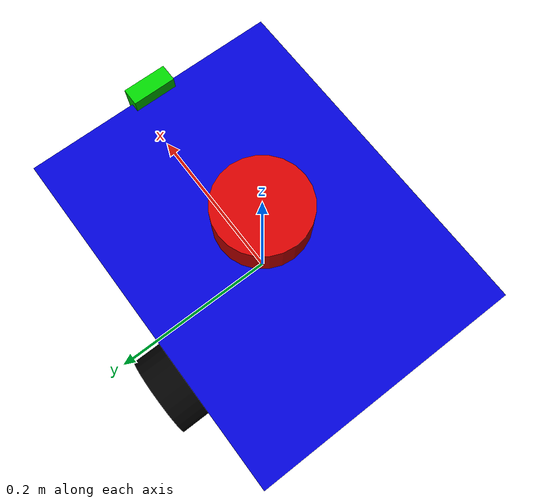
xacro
<?xml version="1.0"?>
<robot name="service_robot" xmlns:xacro="http://www.ros.org/wiki/xacro">
  <xacro:include filename="$(find robot_description)/urdf/gazebo_plugins.xacro"/>
  <!-- ===================== PROPERTIES ===================== -->
  <xacro:property name="base_length" value="0.4"/>
  <xacro:property name="base_width" value="0.3"/>
  <xacro:property name="base_height" value="0.15"/>
  <xacro:property name="wheel_radius" value="0.05"/>
  <xacro:property name="wheel_width" value="0.04"/>

  <!-- ===================== BASE LINK ===================== -->
  <link name="base_footprint"/>

  <joint name="base_footprint_joint" type="fixed">
    <parent link="base_footprint"/>
    <child link="base_link"/>
    <origin xyz="0 0 ${wheel_radius}" rpy="0 0 0"/>
  </joint>

  <link name="base_link">
    <visual>
      <geometry>
        <box size="${base_length} ${base_width} ${base_height}"/>
      </geometry>
      <material name="blue">
        <color rgba="0.0 0.0 0.8 1.0"/>
      </material>
    </visual>
    <collision>
      <geometry>
        <box size="${base_length} ${base_width} ${base_height}"/>
      </geometry>
    </collision>
    <inertial>
      <mass value="5.0"/>
      <!-- box: ixx=(m/12)(w²+h²), iyy=(m/12)(l²+h²), izz=(m/12)(l²+w²) -->
      <inertia ixx="0.04688" ixy="0.0" ixz="0.0"
               iyy="0.07604" iyz="0.0" izz="0.10417"/>
    </inertial>
  </link>

  <!-- ===================== LEFT WHEEL ===================== -->
  <joint name="left_wheel_joint" type="continuous">
    <parent link="base_link"/>
    <child link="left_wheel"/>
    <origin xyz="-0.05 ${base_width/2 + wheel_width/2} ${-base_height/2}" rpy="-1.5708 0 0"/>
    <axis xyz="0 0 1"/>
  </joint>

  <link name="left_wheel">
    <visual>
      <geometry>
        <cylinder radius="${wheel_radius}" length="${wheel_width}"/>
      </geometry>
      <material name="black">
        <color rgba="0.0 0.0 0.0 1.0"/>
      </material>
    </visual>
    <collision>
      <geometry>
        <cylinder radius="${wheel_radius}" length="${wheel_width}"/>
      </geometry>
    </collision>
    <inertial>
      <mass value="0.5"/>
      <!-- cylinder: ixx=iyy=(m/12)(3r²+h²), izz=(m/2)r² -->
      <inertia ixx="0.00038" ixy="0.0" ixz="0.0"
               iyy="0.00038" iyz="0.0" izz="0.00063"/>
    </inertial>
  </link>

  <!-- ===================== RIGHT WHEEL ===================== -->
  <joint name="right_wheel_joint" type="continuous">
    <parent link="base_link"/>
    <child link="right_wheel"/>
    <origin xyz="-0.05 ${-(base_width/2 + wheel_width/2)} ${-base_height/2}" rpy="-1.5708 0 0"/>
    <axis xyz="0 0 1"/>
  </joint>

  <link name="right_wheel">
    <visual>
      <geometry>
        <cylinder radius="${wheel_radius}" length="${wheel_width}"/>
      </geometry>
      <material name="black">
        <color rgba="0.0 0.0 0.0 1.0"/>
      </material>
    </visual>
    <collision>
      <geometry>
        <cylinder radius="${wheel_radius}" length="${wheel_width}"/>
      </geometry>
    </collision>
    <inertial>
      <mass value="0.5"/>
      <!-- cylinder: ixx=iyy=(m/12)(3r²+h²), izz=(m/2)r² -->
      <inertia ixx="0.00038" ixy="0.0" ixz="0.0"
               iyy="0.00038" iyz="0.0" izz="0.00063"/>
    </inertial>
  </link>

  <!-- ===================== CASTER WHEEL ===================== -->
  <!-- Fixed joint + near-zero friction sphere = ball-joint behaviour (SDF style) -->
  <joint name="caster_joint" type="fixed">
    <parent link="base_link"/>
    <child link="caster_wheel"/>
    <!-- Caster at FRONT (+X) so it resists forward tipping when braking.
         z lowered by wheel_radius/2 so sphere bottom (r=0.025) is flush with ground. -->
    <origin xyz="${base_length/2 - 0.05} 0 ${-base_height/2 - wheel_radius/2}" rpy="0 0 0"/>
  </joint>

  <link name="caster_wheel">
    <visual>
      <geometry>
        <sphere radius="${wheel_radius/2}"/>
      </geometry>
      <material name="gray">
        <color rgba="0.5 0.5 0.5 1.0"/>
      </material>
    </visual>
    <collision>
      <geometry>
        <sphere radius="${wheel_radius/2}"/>
      </geometry>
    </collision>
    <inertial>
      <mass value="0.1"/>
      <!-- sphere: ixx=iyy=izz=(2/5)mr² = 0.4*0.1*0.025² -->
      <inertia ixx="0.000025" ixy="0.0" ixz="0.0"
               iyy="0.000025" iyz="0.0" izz="0.000025"/>
    </inertial>
  </link>

  <!-- ===================== LIDAR ===================== -->
  <joint name="lidar_joint" type="fixed">
    <parent link="base_link"/>
    <child link="lidar_link"/>
    <origin xyz="0 0 ${base_height/2 + 0.05}" rpy="0 0 0"/>
  </joint>

  <link name="lidar_link">
    <visual>
      <geometry>
        <cylinder radius="0.05" length="0.04"/>
      </geometry>
      <material name="red">
        <color rgba="0.8 0.0 0.0 1.0"/>
      </material>
    </visual>
    <collision>
      <geometry>
        <cylinder radius="0.05" length="0.04"/>
      </geometry>
    </collision>
    <inertial>
      <mass value="0.1"/>
      <inertia ixx="0.0001" ixy="0.0" ixz="0.0"
               iyy="0.0001" iyz="0.0" izz="0.0001"/>
    </inertial>
  </link>

  <!-- ===================== CAMERA ===================== -->
  <joint name="camera_joint" type="fixed">
    <parent link="base_link"/>
    <child link="camera_link"/>
    <origin xyz="${base_length/2} 0 ${base_height/2}" rpy="0 0 0"/>
  </joint>

  <link name="camera_link">
    <visual>
      <geometry>
        <box size="0.02 0.05 0.03"/>
      </geometry>
      <material name="green">
        <color rgba="0.0 0.8 0.0 1.0"/>
      </material>
    </visual>
    <inertial>
      <mass value="0.05"/>
      <inertia ixx="0.0001" ixy="0.0" ixz="0.0"
               iyy="0.0001" iyz="0.0" izz="0.0001"/>
    </inertial>
  </link>

  <!-- ===================== IMU ===================== -->
  <joint name="imu_joint" type="fixed">
    <parent link="base_link"/>
    <child link="imu_link"/>
    <origin xyz="0 0 0" rpy="0 0 0"/>
  </joint>

  <link name="imu_link">
    <inertial>
      <mass value="0.01"/>
      <inertia ixx="0.0001" ixy="0.0" ixz="0.0"
               iyy="0.0001" iyz="0.0" izz="0.0001"/>
    </inertial>
  </link>

</robot>
